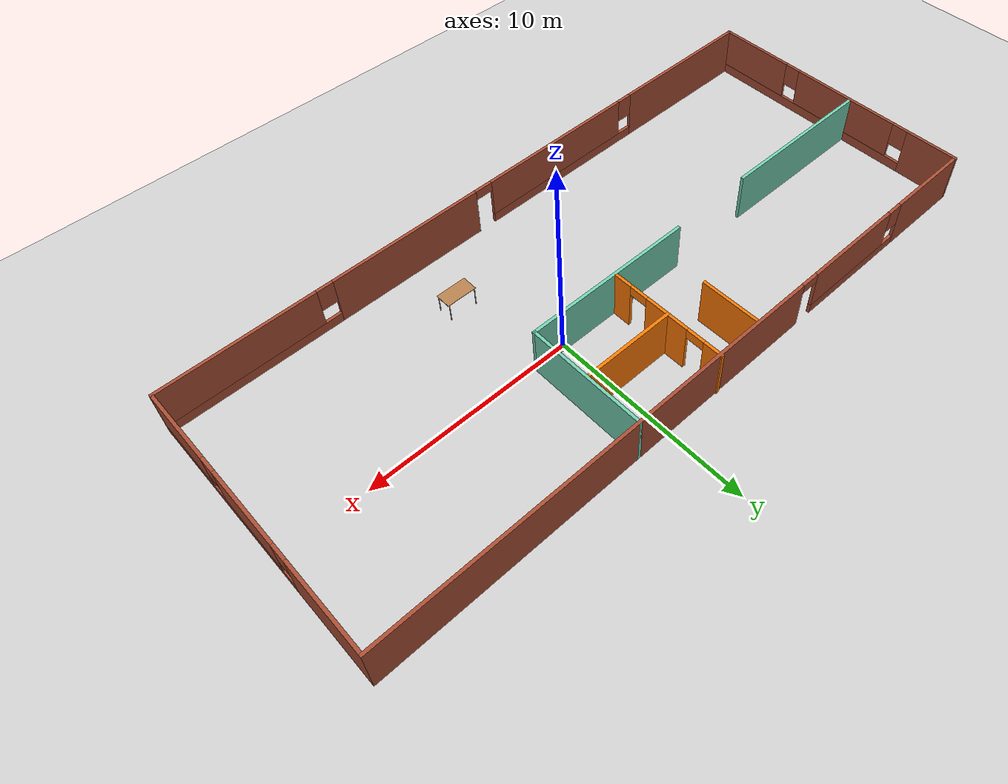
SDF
<sdf version="1.6">
 <world name="default">
  <model name="ground_plane">
   <static>1</static>
   <link name="link">
    <collision name="collision">
     <geometry><plane><normal>0 0 1</normal><size>100 100</size></plane></geometry>
     <surface>
      <contact><collide_bitmask>65535</collide_bitmask></contact>
      <friction><ode><mu>100</mu><mu2>50</mu2></ode></friction>
     </surface>
    </collision>
    <visual name="visual">
     <cast_shadows>0</cast_shadows>
     <geometry><plane><normal>0 0 1</normal><size>100 100</size></plane></geometry>
     <material>
      <script><uri>file://media/materials/scripts/gazebo.material</uri><name>Gazebo/Grey</name></script>
     </material>
    </visual>
   </link>
  </model>
  <model name="myrestaurant">
   <pose>-2.62013 -0.85829 0 0 -0 0</pose>
   <link name="Wall_1">
    <pose>0 6.89452 0 0 -0 0</pose>
    <visual name="Wall_1_Visual_0">
     <pose>-14.5129 0 1.25 0 -0 0</pose>
     <geometry><box><size>4.47417 0.15 2.5</size></box></geometry>
     <material>
      <script><uri>file://media/materials/scripts/gazebo.material</uri><name>Gazebo/Bricks</name></script>
      <ambient>1 1 1 1</ambient>
     </material>
     <meta><layer>0</layer></meta>
    </visual>
    <collision name="Wall_1_Collision_0">
     <geometry><box><size>4.47417 0.15 2.5</size></box></geometry>
     <pose>-14.5129 0 1.25 0 -0 0</pose>
    </collision>
    <visual name="Wall_1_Visual_1">
     <pose>5.67695 0 1.25 0 -0 0</pose>
     <geometry><box><size>22.1461 0.15 2.5</size></box></geometry>
     <material>
      <script><uri>file://media/materials/scripts/gazebo.material</uri><name>Gazebo/Bricks</name></script>
      <ambient>1 1 1 1</ambient>
     </material>
     <meta><layer>0</layer></meta>
    </visual>
    <collision name="Wall_1_Collision_1">
     <geometry><box><size>22.1461 0.15 2.5</size></box></geometry>
     <pose>5.67695 0 1.25 0 -0 0</pose>
    </collision>
    <visual name="Wall_1_Visual_2">
     <pose>-9.28596 0 0.25 0 -0 0</pose>
     <geometry><box><size>5.97973 0.15 0.5</size></box></geometry>
     <material>
      <script><uri>file://media/materials/scripts/gazebo.material</uri><name>Gazebo/Bricks</name></script>
      <ambient>1 1 1 1</ambient>
     </material>
     <meta><layer>0</layer></meta>
    </visual>
    <collision name="Wall_1_Collision_2">
     <geometry><box><size>5.97973 0.15 0.5</size></box></geometry>
     <pose>-9.28596 0 0.25 0 -0 0</pose>
    </collision>
    <visual name="Wall_1_Visual_3">
     <pose>-8.88596 0 1.5 0 -0 0</pose>
     <geometry><box><size>5.17973 0.15 2</size></box></geometry>
     <material>
      <script><uri>file://media/materials/scripts/gazebo.material</uri><name>Gazebo/Bricks</name></script>
      <ambient>1 1 1 1</ambient>
     </material>
     <meta><layer>0</layer></meta>
    </visual>
    <collision name="Wall_1_Collision_3">
     <geometry><box><size>5.17973 0.15 2</size></box></geometry>
     <pose>-8.88596 0 1.5 0 -0 0</pose>
    </collision>
    <visual name="Wall_1_Visual_4">
     <pose>-11.8758 0 1.9 0 -0 0</pose>
     <geometry><box><size>0.8 0.15 1.2</size></box></geometry>
     <material>
      <script><uri>file://media/materials/scripts/gazebo.material</uri><name>Gazebo/Bricks</name></script>
      <ambient>1 1 1 1</ambient>
     </material>
     <meta><layer>0</layer></meta>
    </visual>
    <collision name="Wall_1_Collision_4">
     <geometry><box><size>0.8 0.15 1.2</size></box></geometry>
     <pose>-11.8758 0 1.9 0 -0 0</pose>
    </collision>
    <visual name="Wall_1_Visual_5">
     <pose>-5.84609 0 2.25 0 -0 0</pose>
     <geometry><box><size>0.9 0.15 0.5</size></box></geometry>
     <material>
      <script><uri>file://media/materials/scripts/gazebo.material</uri><name>Gazebo/Bricks</name></script>
      <ambient>1 1 1 1</ambient>
     </material>
     <meta><layer>0</layer></meta>
    </visual>
    <collision name="Wall_1_Collision_5">
     <geometry><box><size>0.9 0.15 0.5</size></box></geometry>
     <pose>-5.84609 0 2.25 0 -0 0</pose>
    </collision>
   </link>
   <link name="Wall_10">
    <collision name="Wall_10_Collision">
     <geometry><box><size>6 0.15 2.5</size></box></geometry>
     <pose>0 0 1.25 0 -0 0</pose>
    </collision>
    <visual name="Wall_10_Visual">
     <pose>0 0 1.25 0 -0 0</pose>
     <geometry><box><size>6 0.15 2.5</size></box></geometry>
     <material>
      <script><uri>file://media/materials/scripts/gazebo.material</uri><name>Gazebo/Grey</name></script>
      <ambient>0.435294 0.796078 0.67451 1</ambient>
     </material>
     <meta><layer>0</layer></meta>
    </visual>
    <pose>4.24448 3.96952 0 0 0 -1.5708</pose>
   </link>
   <link name="Wall_11">
    <collision name="Wall_11_Collision">
     <geometry><box><size>8.5 0.15 2.5</size></box></geometry>
     <pose>0 0 1.25 0 -0 0</pose>
    </collision>
    <visual name="Wall_11_Visual">
     <pose>0 0 1.25 0 -0 0</pose>
     <geometry><box><size>8.5 0.15 2.5</size></box></geometry>
     <material>
      <script><uri>file://media/materials/scripts/gazebo.material</uri><name>Gazebo/Grey</name></script>
      <ambient>0.435294 0.796078 0.67451 1</ambient>
     </material>
     <meta><layer>0</layer></meta>
    </visual>
    <pose>0.069478 1.04452 0 0 -0 3.14159</pose>
   </link>
   <link name="Wall_14">
    <collision name="Wall_14_Collision">
     <geometry><box><size>3 0.15 2.5</size></box></geometry>
     <pose>0 0 1.25 0 -0 0</pose>
    </collision>
    <visual name="Wall_14_Visual">
     <pose>0 0 1.25 0 -0 0</pose>
     <geometry><box><size>3 0.15 2.5</size></box></geometry>
     <material>
      <script><uri>file://media/materials/scripts/gazebo.material</uri><name>Gazebo/Grey</name></script>
      <ambient>0.996078 0.47451 0.0196078 1</ambient>
     </material>
     <meta><layer>0</layer></meta>
    </visual>
    <pose>-2.58512 5.40799 0 0 0 -1.5708</pose>
   </link>
   <link name="Wall_2">
    <pose>16.675 0.094516 0 0 0 -1.5708</pose>
    <visual name="Wall_2_Visual_0">
     <pose>-4.63791 0 1.25 0 -0 0</pose>
     <geometry><box><size>4.47417 0.15 2.5</size></box></geometry>
     <material>
      <script><uri>file://media/materials/scripts/gazebo.material</uri><name>Gazebo/Bricks</name></script>
      <ambient>1 1 1 1</ambient>
     </material>
     <meta><layer>0</layer></meta>
    </visual>
    <collision name="Wall_2_Collision_0">
     <geometry><box><size>4.47417 0.15 2.5</size></box></geometry>
     <pose>-4.63791 0 1.25 0 -0 0</pose>
    </collision>
    <visual name="Wall_2_Visual_1">
     <pose>2.23709 0 0.25 0 -0 0</pose>
     <geometry><box><size>9.27583 0.15 0.5</size></box></geometry>
     <material>
      <script><uri>file://media/materials/scripts/gazebo.material</uri><name>Gazebo/Bricks</name></script>
      <ambient>1 1 1 1</ambient>
     </material>
     <meta><layer>0</layer></meta>
    </visual>
    <collision name="Wall_2_Collision_1">
     <geometry><box><size>9.27583 0.15 0.5</size></box></geometry>
     <pose>2.23709 0 0.25 0 -0 0</pose>
    </collision>
    <visual name="Wall_2_Visual_2">
     <pose>0.337234 0 1.5 0 -0 0</pose>
     <geometry><box><size>3.87612 0.15 2</size></box></geometry>
     <material>
      <script><uri>file://media/materials/scripts/gazebo.material</uri><name>Gazebo/Bricks</name></script>
      <ambient>1 1 1 1</ambient>
     </material>
     <meta><layer>0</layer></meta>
    </visual>
    <collision name="Wall_2_Collision_2">
     <geometry><box><size>3.87612 0.15 2</size></box></geometry>
     <pose>0.337234 0 1.5 0 -0 0</pose>
    </collision>
    <visual name="Wall_2_Visual_3">
     <pose>4.97515 0 1.5 0 -0 0</pose>
     <geometry><box><size>3.79971 0.15 2</size></box></geometry>
     <material>
      <script><uri>file://media/materials/scripts/gazebo.material</uri><name>Gazebo/Bricks</name></script>
      <ambient>1 1 1 1</ambient>
     </material>
     <meta><layer>0</layer></meta>
    </visual>
    <collision name="Wall_2_Collision_3">
     <geometry><box><size>3.79971 0.15 2</size></box></geometry>
     <pose>4.97515 0 1.5 0 -0 0</pose>
    </collision>
    <visual name="Wall_2_Visual_4">
     <pose>-2.00083 0 1.9 0 -0 0</pose>
     <geometry><box><size>0.8 0.15 1.2</size></box></geometry>
     <material>
      <script><uri>file://media/materials/scripts/gazebo.material</uri><name>Gazebo/Bricks</name></script>
      <ambient>1 1 1 1</ambient>
     </material>
     <meta><layer>0</layer></meta>
    </visual>
    <collision name="Wall_2_Collision_4">
     <geometry><box><size>0.8 0.15 1.2</size></box></geometry>
     <pose>-2.00083 0 1.9 0 -0 0</pose>
    </collision>
    <visual name="Wall_2_Visual_5">
     <pose>2.67529 0 1.9 0 -0 0</pose>
     <geometry><box><size>0.8 0.15 1.2</size></box></geometry>
     <material>
      <script><uri>file://media/materials/scripts/gazebo.material</uri><name>Gazebo/Bricks</name></script>
      <ambient>1 1 1 1</ambient>
     </material>
     <meta><layer>0</layer></meta>
    </visual>
    <collision name="Wall_2_Collision_5">
     <geometry><box><size>0.8 0.15 1.2</size></box></geometry>
     <pose>2.67529 0 1.9 0 -0 0</pose>
    </collision>
   </link>
   <link name="Wall_20">
    <pose>-0.247057 4.03104 0 0 0 -1.5708</pose>
    <visual name="Wall_20_Visual_0">
     <pose>-2.51069 0 1.25 0 -0 0</pose>
     <geometry><box><size>0.978613 0.15 2.5</size></box></geometry>
     <material>
      <script><uri>file://media/materials/scripts/gazebo.material</uri><name>Gazebo/Grey</name></script>
      <ambient>0.996078 0.47451 0.0196078 1</ambient>
     </material>
     <meta><layer>0</layer></meta>
    </visual>
    <collision name="Wall_20_Collision_0">
     <geometry><box><size>0.978613 0.15 2.5</size></box></geometry>
     <pose>-2.51069 0 1.25 0 -0 0</pose>
    </collision>
    <visual name="Wall_20_Visual_1">
     <pose>-0.002426 0 1.25 0 -0 0</pose>
     <geometry><box><size>2.23792 0.15 2.5</size></box></geometry>
     <material>
      <script><uri>file://media/materials/scripts/gazebo.material</uri><name>Gazebo/Grey</name></script>
      <ambient>0.996078 0.47451 0.0196078 1</ambient>
     </material>
     <meta><layer>0</layer></meta>
    </visual>
    <collision name="Wall_20_Collision_1">
     <geometry><box><size>2.23792 0.15 2.5</size></box></geometry>
     <pose>-0.002426 0 1.25 0 -0 0</pose>
    </collision>
    <visual name="Wall_20_Visual_2">
     <pose>2.50827 0 1.25 0 -0 0</pose>
     <geometry><box><size>0.983465 0.15 2.5</size></box></geometry>
     <material>
      <script><uri>file://media/materials/scripts/gazebo.material</uri><name>Gazebo/Grey</name></script>
      <ambient>0.996078 0.47451 0.0196078 1</ambient>
     </material>
     <meta><layer>0</layer></meta>
    </visual>
    <collision name="Wall_20_Collision_2">
     <geometry><box><size>0.983465 0.15 2.5</size></box></geometry>
     <pose>2.50827 0 1.25 0 -0 0</pose>
    </collision>
    <visual name="Wall_20_Visual_3">
     <pose>-1.57139 0 2.25 0 -0 0</pose>
     <geometry><box><size>0.9 0.15 0.5</size></box></geometry>
     <material>
      <script><uri>file://media/materials/scripts/gazebo.material</uri><name>Gazebo/Grey</name></script>
      <ambient>0.996078 0.47451 0.0196078 1</ambient>
     </material>
     <meta><layer>0</layer></meta>
    </visual>
    <collision name="Wall_20_Collision_3">
     <geometry><box><size>0.9 0.15 0.5</size></box></geometry>
     <pose>-1.57139 0 2.25 0 -0 0</pose>
    </collision>
    <visual name="Wall_20_Visual_4">
     <pose>1.56654 0 2.25 0 -0 0</pose>
     <geometry><box><size>0.9 0.15 0.5</size></box></geometry>
     <material>
      <script><uri>file://media/materials/scripts/gazebo.material</uri><name>Gazebo/Grey</name></script>
      <ambient>0.996078 0.47451 0.0196078 1</ambient>
     </material>
     <meta><layer>0</layer></meta>
    </visual>
    <collision name="Wall_20_Collision_4">
     <geometry><box><size>0.9 0.15 0.5</size></box></geometry>
     <pose>1.56654 0 2.25 0 -0 0</pose>
    </collision>
   </link>
   <link name="Wall_22">
    <collision name="Wall_22_Collision">
     <geometry><box><size>4.5 0.15 2.5</size></box></geometry>
     <pose>0 0 1.25 0 -0 0</pose>
    </collision>
    <visual name="Wall_22_Visual">
     <pose>0 0 1.25 0 -0 0</pose>
     <geometry><box><size>4.5 0.15 2.5</size></box></geometry>
     <material>
      <script><uri>file://media/materials/scripts/gazebo.material</uri><name>Gazebo/Grey</name></script>
      <ambient>0.996078 0.47451 0.0196078 1</ambient>
     </material>
     <meta><layer>0</layer></meta>
    </visual>
    <pose>1.92794 4.06423 0 0 -0 0</pose>
   </link>
   <link name="Wall_5">
    <pose>-16.675 -0.030484 0 0 0 -1.5708</pose>
    <visual name="Wall_5_Visual_0">
     <pose>-5.65507 0 1.25 0 -0 0</pose>
     <geometry><box><size>2.68987 0.15 2.5</size></box></geometry>
     <material>
      <script><uri>file://media/materials/scripts/gazebo.material</uri><name>Gazebo/Bricks</name></script>
      <ambient>1 1 1 1</ambient>
     </material>
     <meta><layer>0</layer></meta>
    </visual>
    <collision name="Wall_5_Collision_0">
     <geometry><box><size>2.68987 0.15 2.5</size></box></geometry>
     <pose>-5.65507 0 1.25 0 -0 0</pose>
    </collision>
    <visual name="Wall_5_Visual_1">
     <pose>1.34493 0 0.25 0 -0 0</pose>
     <geometry><box><size>11.3101 0.15 0.5</size></box></geometry>
     <material>
      <script><uri>file://media/materials/scripts/gazebo.material</uri><name>Gazebo/Bricks</name></script>
      <ambient>1 1 1 1</ambient>
     </material>
     <meta><layer>0</layer></meta>
    </visual>
    <collision name="Wall_5_Collision_1">
     <geometry><box><size>11.3101 0.15 0.5</size></box></geometry>
     <pose>1.34493 0 0.25 0 -0 0</pose>
    </collision>
    <visual name="Wall_5_Visual_2">
     <pose>-0.649157 0 1.5 0 -0 0</pose>
     <geometry><box><size>5.72196 0.15 2</size></box></geometry>
     <material>
      <script><uri>file://media/materials/scripts/gazebo.material</uri><name>Gazebo/Bricks</name></script>
      <ambient>1 1 1 1</ambient>
     </material>
     <meta><layer>0</layer></meta>
    </visual>
    <collision name="Wall_5_Collision_2">
     <geometry><box><size>5.72196 0.15 2</size></box></geometry>
     <pose>-0.649157 0 1.5 0 -0 0</pose>
    </collision>
    <visual name="Wall_5_Visual_3">
     <pose>5.00591 0 1.5 0 -0 0</pose>
     <geometry><box><size>3.98818 0.15 2</size></box></geometry>
     <material>
      <script><uri>file://media/materials/scripts/gazebo.material</uri><name>Gazebo/Bricks</name></script>
      <ambient>1 1 1 1</ambient>
     </material>
     <meta><layer>0</layer></meta>
    </visual>
    <collision name="Wall_5_Collision_3">
     <geometry><box><size>3.98818 0.15 2</size></box></geometry>
     <pose>5.00591 0 1.5 0 -0 0</pose>
    </collision>
    <visual name="Wall_5_Visual_4">
     <pose>-3.91013 0 1.9 0 -0 0</pose>
     <geometry><box><size>0.8 0.15 1.2</size></box></geometry>
     <material>
      <script><uri>file://media/materials/scripts/gazebo.material</uri><name>Gazebo/Bricks</name></script>
      <ambient>1 1 1 1</ambient>
     </material>
     <meta><layer>0</layer></meta>
    </visual>
    <collision name="Wall_5_Collision_4">
     <geometry><box><size>0.8 0.15 1.2</size></box></geometry>
     <pose>-3.91013 0 1.9 0 -0 0</pose>
    </collision>
    <visual name="Wall_5_Visual_5">
     <pose>2.61182 0 1.9 0 -0 0</pose>
     <geometry><box><size>0.8 0.15 1.2</size></box></geometry>
     <material>
      <script><uri>file://media/materials/scripts/gazebo.material</uri><name>Gazebo/Bricks</name></script>
      <ambient>1 1 1 1</ambient>
     </material>
     <meta><layer>0</layer></meta>
    </visual>
    <collision name="Wall_5_Collision_5">
     <geometry><box><size>0.8 0.15 1.2</size></box></geometry>
     <pose>2.61182 0 1.9 0 -0 0</pose>
    </collision>
   </link>
   <link name="Wall_6">
    <pose>0 -6.83048 0 0 -0 0.007496</pose>
    <visual name="Wall_6_Visual_0">
     <pose>-12.9142 0 1.25 0 -0 0</pose>
     <geometry><box><size>7.67252 0.15 2.5</size></box></geometry>
     <material>
      <script><uri>file://media/materials/scripts/gazebo.material</uri><name>Gazebo/Bricks</name></script>
      <ambient>1 1 1 1</ambient>
     </material>
     <meta><layer>0</layer></meta>
    </visual>
    <collision name="Wall_6_Collision_0">
     <geometry><box><size>7.67252 0.15 2.5</size></box></geometry>
     <pose>-12.9142 0 1.25 0 -0 0</pose>
    </collision>
    <visual name="Wall_6_Visual_1">
     <pose>4.66954 0 1.25 0 -0 0</pose>
     <geometry><box><size>7.7026 0.15 2.5</size></box></geometry>
     <material>
      <script><uri>file://media/materials/scripts/gazebo.material</uri><name>Gazebo/Bricks</name></script>
      <ambient>1 1 1 1</ambient>
     </material>
     <meta><layer>0</layer></meta>
    </visual>
    <collision name="Wall_6_Collision_1">
     <geometry><box><size>7.7026 0.15 2.5</size></box></geometry>
     <pose>4.66954 0 1.25 0 -0 0</pose>
    </collision>
    <visual name="Wall_6_Visual_2">
     <pose>-4.57985 0 0.25 0 -0 0</pose>
     <geometry><box><size>8.99619 0.15 0.5</size></box></geometry>
     <material>
      <script><uri>file://media/materials/scripts/gazebo.material</uri><name>Gazebo/Bricks</name></script>
      <ambient>1 1 1 1</ambient>
     </material>
     <meta><layer>0</layer></meta>
    </visual>
    <collision name="Wall_6_Collision_2">
     <geometry><box><size>8.99619 0.15 0.5</size></box></geometry>
     <pose>-4.57985 0 0.25 0 -0 0</pose>
    </collision>
    <visual name="Wall_6_Visual_3">
     <pose>12.6357 0 0.25 0 -0 0</pose>
     <geometry><box><size>8.22963 0.15 0.5</size></box></geometry>
     <material>
      <script><uri>file://media/materials/scripts/gazebo.material</uri><name>Gazebo/Bricks</name></script>
      <ambient>1 1 1 1</ambient>
     </material>
     <meta><layer>0</layer></meta>
    </visual>
    <collision name="Wall_6_Collision_3">
     <geometry><box><size>8.22963 0.15 0.5</size></box></geometry>
     <pose>12.6357 0 0.25 0 -0 0</pose>
    </collision>
    <visual name="Wall_6_Visual_4">
     <pose>-4.17985 0 1.5 0 -0 0</pose>
     <geometry><box><size>8.19619 0.15 2</size></box></geometry>
     <material>
      <script><uri>file://media/materials/scripts/gazebo.material</uri><name>Gazebo/Bricks</name></script>
      <ambient>1 1 1 1</ambient>
     </material>
     <meta><layer>0</layer></meta>
    </visual>
    <collision name="Wall_6_Collision_4">
     <geometry><box><size>8.19619 0.15 2</size></box></geometry>
     <pose>-4.17985 0 1.5 0 -0 0</pose>
    </collision>
    <visual name="Wall_6_Visual_5">
     <pose>-4.17985 0 1.5 0 -0 0</pose>
     <geometry><box><size>8.19619 0.15 2</size></box></geometry>
     <material>
      <script><uri>file://media/materials/scripts/gazebo.material</uri><name>Gazebo/Bricks</name></script>
      <ambient>1 1 1 1</ambient>
     </material>
     <meta><layer>0</layer></meta>
    </visual>
    <collision name="Wall_6_Collision_5">
     <geometry><box><size>8.19619 0.15 2</size></box></geometry>
     <pose>-4.17985 0 1.5 0 -0 0</pose>
    </collision>
    <visual name="Wall_6_Visual_6">
     <pose>13.0357 0 1.5 0 -0 0</pose>
     <geometry><box><size>7.42963 0.15 2</size></box></geometry>
     <material>
      <script><uri>file://media/materials/scripts/gazebo.material</uri><name>Gazebo/Bricks</name></script>
      <ambient>1 1 1 1</ambient>
     </material>
     <meta><layer>0</layer></meta>
    </visual>
    <collision name="Wall_6_Collision_6">
     <geometry><box><size>7.42963 0.15 2</size></box></geometry>
     <pose>13.0357 0 1.5 0 -0 0</pose>
    </collision>
    <visual name="Wall_6_Visual_7">
     <pose>-8.67794 0 1.9 0 -0 0</pose>
     <geometry><box><size>0.8 0.15 1.2</size></box></geometry>
     <material>
      <script><uri>file://media/materials/scripts/gazebo.material</uri><name>Gazebo/Bricks</name></script>
      <ambient>1 1 1 1</ambient>
     </material>
     <meta><layer>0</layer></meta>
    </visual>
    <collision name="Wall_6_Collision_7">
     <geometry><box><size>0.8 0.15 1.2</size></box></geometry>
     <pose>-8.67794 0 1.9 0 -0 0</pose>
    </collision>
    <visual name="Wall_6_Visual_8">
     <pose>8.92084 0 1.9 0 -0 0</pose>
     <geometry><box><size>0.8 0.15 1.2</size></box></geometry>
     <material>
      <script><uri>file://media/materials/scripts/gazebo.material</uri><name>Gazebo/Bricks</name></script>
      <ambient>1 1 1 1</ambient>
     </material>
     <meta><layer>0</layer></meta>
    </visual>
    <collision name="Wall_6_Collision_8">
     <geometry><box><size>0.8 0.15 1.2</size></box></geometry>
     <pose>8.92084 0 1.9 0 -0 0</pose>
    </collision>
    <visual name="Wall_6_Visual_9">
     <pose>0.368244 0 2.25 0 -0 0</pose>
     <geometry><box><size>0.9 0.15 0.5</size></box></geometry>
     <material>
      <script><uri>file://media/materials/scripts/gazebo.material</uri><name>Gazebo/Bricks</name></script>
      <ambient>1 1 1 1</ambient>
     </material>
     <meta><layer>0</layer></meta>
    </visual>
    <collision name="Wall_6_Collision_9">
     <geometry><box><size>0.9 0.15 0.5</size></box></geometry>
     <pose>0.368244 0 2.25 0 -0 0</pose>
    </collision>
    <visual name="Wall_6_Visual_10">
     <pose>0.368244 0 2.25 0 -0 0</pose>
     <geometry><box><size>0.9 0.15 0.5</size></box></geometry>
     <material>
      <script><uri>file://media/materials/scripts/gazebo.material</uri><name>Gazebo/Bricks</name></script>
      <ambient>1 1 1 1</ambient>
     </material>
     <meta><layer>0</layer></meta>
    </visual>
    <collision name="Wall_6_Collision_10">
     <geometry><box><size>0.9 0.15 0.5</size></box></geometry>
     <pose>0.368244 0 2.25 0 -0 0</pose>
    </collision>
   </link>
   <link name="Wall_8">
    <collision name="Wall_8_Collision">
     <geometry><box><size>8.25 0.15 2.5</size></box></geometry>
     <pose>0 0 1.25 0 -0 0</pose>
    </collision>
    <visual name="Wall_8_Visual">
     <pose>0 0 1.25 0 -0 0</pose>
     <geometry><box><size>8.25 0.15 2.5</size></box></geometry>
     <material>
      <script><uri>file://media/materials/scripts/gazebo.material</uri><name>Gazebo/Grey</name></script>
      <ambient>0.435294 0.796078 0.67451 1</ambient>
     </material>
     <meta><layer>0</layer></meta>
    </visual>
    <pose>-12.625 0.926312 0 0 -0 0</pose>
   </link>
   <static>1</static>
  </model>
  <model name="table_4">
   <static>1</static>
   <link name="link">
    <collision name="surface">
     <pose>0 0 1 0 -0 0</pose>
     <geometry><box><size>1.5 0.8 0.03</size></box></geometry>
     <surface><friction><ode><mu>0.6</mu><mu2>0.6</mu2></ode></friction></surface>
    </collision>
    <visual name="visual1">
     <pose>0 0 1 0 -0 0</pose>
     <geometry><box><size>1.5 0.8 0.03</size></box></geometry>
     <material>
      <script><uri>file://media/materials/scripts/gazebo.material</uri><name>Gazebo/Wood</name></script>
     </material>
    </visual>
    <collision name="front_left_leg">
     <pose>0.68 0.38 0.5 0 -0 0</pose>
     <geometry><cylinder><radius>0.02</radius><length>1</length></cylinder></geometry>
    </collision>
    <visual name="front_left_leg">
     <pose>0.68 0.38 0.5 0 -0 0</pose>
     <geometry><cylinder><radius>0.02</radius><length>1</length></cylinder></geometry>
     <material>
      <script><uri>file://media/materials/scripts/gazebo.material</uri><name>Gazebo/Grey</name></script>
     </material>
    </visual>
    <collision name="front_right_leg">
     <pose>0.68 -0.38 0.5 0 -0 0</pose>
     <geometry><cylinder><radius>0.02</radius><length>1</length></cylinder></geometry>
    </collision>
    <visual name="front_right_leg">
     <pose>0.68 -0.38 0.5 0 -0 0</pose>
     <geometry><cylinder><radius>0.02</radius><length>1</length></cylinder></geometry>
     <material>
      <script><uri>file://media/materials/scripts/gazebo.material</uri><name>Gazebo/Grey</name></script>
     </material>
    </visual>
    <collision name="back_right_leg">
     <pose>-0.68 -0.38 0.5 0 -0 0</pose>
     <geometry><cylinder><radius>0.02</radius><length>1</length></cylinder></geometry>
    </collision>
    <visual name="back_right_leg">
     <pose>-0.68 -0.38 0.5 0 -0 0</pose>
     <geometry><cylinder><radius>0.02</radius><length>1</length></cylinder></geometry>
     <material>
      <script><uri>file://media/materials/scripts/gazebo.material</uri><name>Gazebo/Grey</name></script>
     </material>
    </visual>
    <collision name="back_left_leg">
     <pose>-0.68 0.38 0.5 0 -0 0</pose>
     <geometry><cylinder><radius>0.02</radius><length>1</length></cylinder></geometry>
    </collision>
    <visual name="back_left_leg">
     <pose>-0.68 0.38 0.5 0 -0 0</pose>
     <geometry><cylinder><radius>0.02</radius><length>1</length></cylinder></geometry>
     <material>
      <script><uri>file://media/materials/scripts/gazebo.material</uri><name>Gazebo/Grey</name></script>
     </material>
    </visual>
   </link>
   <pose>1.86473 -4.70987 0 0 -0 0</pose>
  </model>
 </world>
</sdf>
